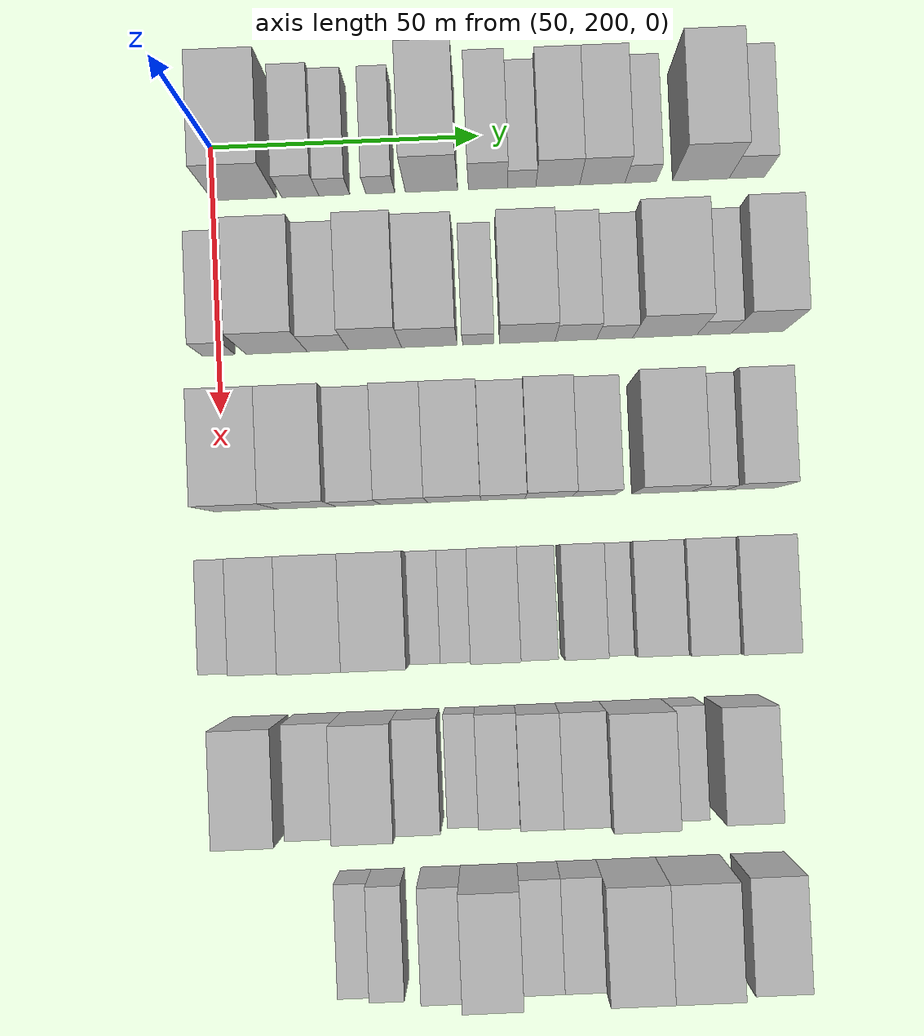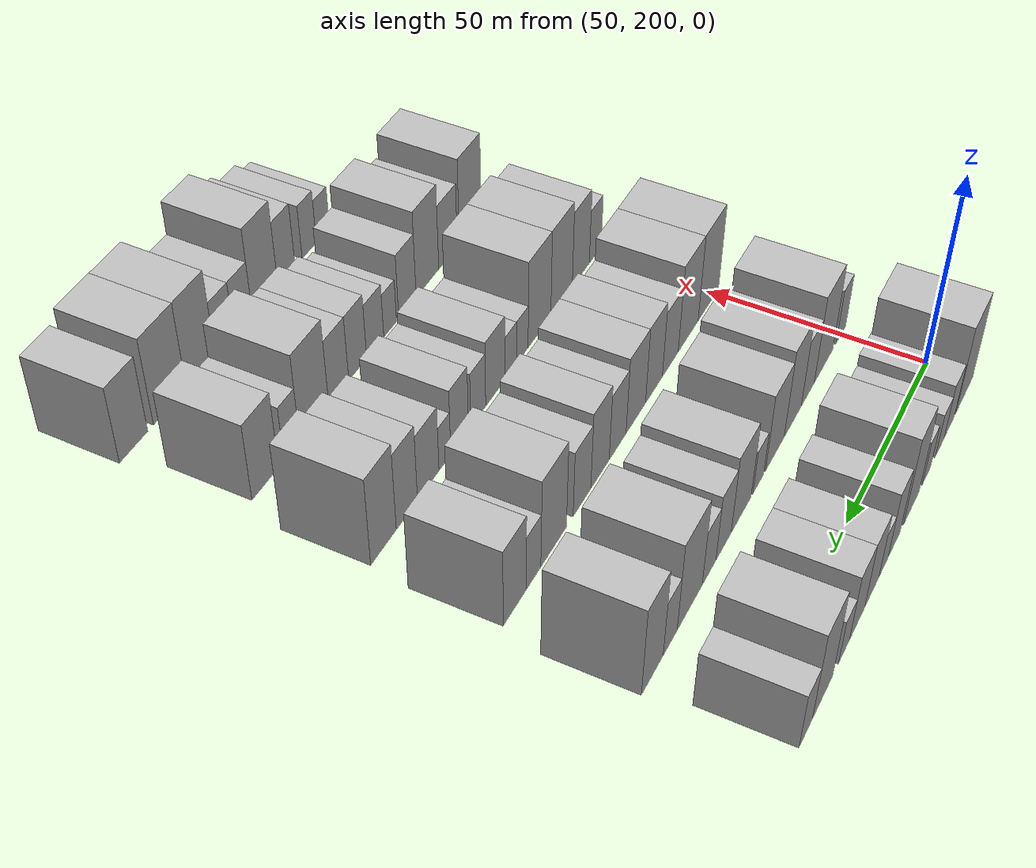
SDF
<sdf version="1.6">
 <world name="default">
  <model name="building_79">
   <static>1</static>
   <pose>50.0000 205.9828 0 0.000000 0.000000 0.000000</pose>
   <link name="link">
    <pose>0 0 12.00 0 0 0</pose>
    <collision name="collision"><geometry><box><size>20.0000 11.8627 24.0000</size></box></geometry></collision>
    <visual name="visual">
     <cast_shadows>0</cast_shadows>
     <geometry><box><size>20.0000 11.8627 24.0000</size></box></geometry>
     <material>
      <script>
       <uri>model://HANNAS_wall/materials/scripts</uri>
       <uri>model://HANNAS_wall/materials/textures</uri>
       <name>vrc/HANNAS_wall</name>
      </script>
     </material>
    </visual>
   </link>
  </model>
  <model name="building_80">
   <static>1</static>
   <pose>50.0000 216.3701 0 0.000000 0.000000 0.000000</pose>
   <link name="link">
    <pose>0 0 7.50 0 0 0</pose>
    <collision name="collision"><geometry><box><size>20.0000 6.9120 15.0000</size></box></geometry></collision>
    <visual name="visual">
     <cast_shadows>0</cast_shadows>
     <geometry><box><size>20.0000 6.9120 15.0000</size></box></geometry>
     <material>
      <script>
       <uri>model://HANNAS_wall/materials/scripts</uri>
       <uri>model://HANNAS_wall/materials/textures</uri>
       <name>vrc/HANNAS_wall</name>
      </script>
     </material>
    </visual>
   </link>
  </model>
  <model name="building_81">
   <static>1</static>
   <pose>50.0000 222.7027 0 0.000000 0.000000 0.000000</pose>
   <link name="link">
    <pose>0 0 6.00 0 0 0</pose>
    <collision name="collision"><geometry><box><size>20.0000 5.7532 12.0000</size></box></geometry></collision>
    <visual name="visual">
     <cast_shadows>0</cast_shadows>
     <geometry><box><size>20.0000 5.7532 12.0000</size></box></geometry>
     <material>
      <script>
       <uri>model://HANNAS_wall/materials/scripts</uri>
       <uri>model://HANNAS_wall/materials/textures</uri>
       <name>vrc/HANNAS_wall</name>
      </script>
     </material>
    </visual>
   </link>
  </model>
  <model name="building_82">
   <static>1</static>
   <pose>50.0000 231.2732 0 0.000000 0.000000 0.000000</pose>
   <link name="link">
    <pose>0 0 6.00 0 0 0</pose>
    <collision name="collision"><geometry><box><size>20.0000 5.3877 12.0000</size></box></geometry></collision>
    <visual name="visual">
     <cast_shadows>0</cast_shadows>
     <geometry><box><size>20.0000 5.3877 12.0000</size></box></geometry>
     <material>
      <script>
       <uri>model://HANNAS_wall/materials/scripts</uri>
       <uri>model://HANNAS_wall/materials/textures</uri>
       <name>vrc/HANNAS_wall</name>
      </script>
     </material>
    </visual>
   </link>
  </model>
  <model name="building_83">
   <static>1</static>
   <pose>50.0000 240.8361 0 0.000000 0.000000 0.000000</pose>
   <link name="link">
    <pose>0 0 12.00 0 0 0</pose>
    <collision name="collision"><geometry><box><size>20.0000 9.7381 24.0000</size></box></geometry></collision>
    <visual name="visual">
     <cast_shadows>0</cast_shadows>
     <geometry><box><size>20.0000 9.7381 24.0000</size></box></geometry>
     <material>
      <script>
       <uri>model://HANNAS_wall/materials/scripts</uri>
       <uri>model://HANNAS_wall/materials/textures</uri>
       <name>vrc/HANNAS_wall</name>
      </script>
     </material>
    </visual>
   </link>
  </model>
  <model name="building_84">
   <static>1</static>
   <pose>50.0000 251.3198 0 0.000000 0.000000 0.000000</pose>
   <link name="link">
    <pose>0 0 9.00 0 0 0</pose>
    <collision name="collision"><geometry><box><size>20.0000 7.2293 18.0000</size></box></geometry></collision>
    <visual name="visual">
     <cast_shadows>0</cast_shadows>
     <geometry><box><size>20.0000 7.2293 18.0000</size></box></geometry>
     <material>
      <script>
       <uri>model://HANNAS_wall/materials/scripts</uri>
       <uri>model://HANNAS_wall/materials/textures</uri>
       <name>vrc/HANNAS_wall</name>
      </script>
     </material>
    </visual>
   </link>
  </model>
  <model name="building_85">
   <static>1</static>
   <pose>50.0000 257.6001 0 0.000000 0.000000 0.000000</pose>
   <link name="link">
    <pose>0 0 6.00 0 0 0</pose>
    <collision name="collision"><geometry><box><size>20.0000 5.3312 12.0000</size></box></geometry></collision>
    <visual name="visual">
     <cast_shadows>0</cast_shadows>
     <geometry><box><size>20.0000 5.3312 12.0000</size></box></geometry>
     <material>
      <script>
       <uri>model://HANNAS_wall/materials/scripts</uri>
       <uri>model://HANNAS_wall/materials/textures</uri>
       <name>vrc/HANNAS_wall</name>
      </script>
     </material>
    </visual>
   </link>
  </model>
  <model name="building_86">
   <static>1</static>
   <pose>50.0000 264.3556 0 0.000000 0.000000 0.000000</pose>
   <link name="link">
    <pose>0 0 9.00 0 0 0</pose>
    <collision name="collision"><geometry><box><size>20.0000 8.1798 18.0000</size></box></geometry></collision>
    <visual name="visual">
     <cast_shadows>0</cast_shadows>
     <geometry><box><size>20.0000 8.1798 18.0000</size></box></geometry>
     <material>
      <script>
       <uri>model://HANNAS_wall/materials/scripts</uri>
       <uri>model://HANNAS_wall/materials/textures</uri>
       <name>vrc/HANNAS_wall</name>
      </script>
     </material>
    </visual>
   </link>
  </model>
  <model name="building_87">
   <static>1</static>
   <pose>50.0000 272.6690 0 0.000000 0.000000 0.000000</pose>
   <link name="link">
    <pose>0 0 9.00 0 0 0</pose>
    <collision name="collision"><geometry><box><size>20.0000 8.4469 18.0000</size></box></geometry></collision>
    <visual name="visual">
     <cast_shadows>0</cast_shadows>
     <geometry><box><size>20.0000 8.4469 18.0000</size></box></geometry>
     <material>
      <script>
       <uri>model://HANNAS_wall/materials/scripts</uri>
       <uri>model://HANNAS_wall/materials/textures</uri>
       <name>vrc/HANNAS_wall</name>
      </script>
     </material>
    </visual>
   </link>
  </model>
  <model name="building_88">
   <static>1</static>
   <pose>50.0000 279.8249 0 0.000000 0.000000 0.000000</pose>
   <link name="link">
    <pose>0 0 6.00 0 0 0</pose>
    <collision name="collision"><geometry><box><size>20.0000 5.8650 12.0000</size></box></geometry></collision>
    <visual name="visual">
     <cast_shadows>0</cast_shadows>
     <geometry><box><size>20.0000 5.8650 12.0000</size></box></geometry>
     <material>
      <script>
       <uri>model://HANNAS_wall/materials/scripts</uri>
       <uri>model://HANNAS_wall/materials/textures</uri>
       <name>vrc/HANNAS_wall</name>
      </script>
     </material>
    </visual>
   </link>
  </model>
  <model name="building_89">
   <static>1</static>
   <pose>50.0000 291.0413 0 0.000000 0.000000 0.000000</pose>
   <link name="link">
    <pose>0 0 12.00 0 0 0</pose>
    <collision name="collision"><geometry><box><size>20.0000 10.5678 24.0000</size></box></geometry></collision>
    <visual name="visual">
     <cast_shadows>0</cast_shadows>
     <geometry><box><size>20.0000 10.5678 24.0000</size></box></geometry>
     <material>
      <script>
       <uri>model://HANNAS_wall/materials/scripts</uri>
       <uri>model://HANNAS_wall/materials/textures</uri>
       <name>vrc/HANNAS_wall</name>
      </script>
     </material>
    </visual>
   </link>
  </model>
  <model name="building_90">
   <static>1</static>
   <pose>50.0000 299.6284 0 0.000000 0.000000 0.000000</pose>
   <link name="link">
    <pose>0 0 7.50 0 0 0</pose>
    <collision name="collision"><geometry><box><size>20.0000 6.6063 15.0000</size></box></geometry></collision>
    <visual name="visual">
     <cast_shadows>0</cast_shadows>
     <geometry><box><size>20.0000 6.6063 15.0000</size></box></geometry>
     <material>
      <script>
       <uri>model://HANNAS_wall/materials/scripts</uri>
       <uri>model://HANNAS_wall/materials/textures</uri>
       <name>vrc/HANNAS_wall</name>
      </script>
     </material>
    </visual>
   </link>
  </model>
  <model name="building_189">
   <static>1</static>
   <pose>79.0000 200.1089 0 0.000000 0.000000 0.000000</pose>
   <link name="link">
    <pose>0 0 7.50 0 0 0</pose>
    <collision name="collision"><geometry><box><size>20.0000 6.0738 15.0000</size></box></geometry></collision>
    <visual name="visual">
     <cast_shadows>0</cast_shadows>
     <geometry><box><size>20.0000 6.0738 15.0000</size></box></geometry>
     <material>
      <script>
       <uri>model://HANNAS_wall/materials/scripts</uri>
       <uri>model://HANNAS_wall/materials/textures</uri>
       <name>vrc/HANNAS_wall</name>
      </script>
     </material>
    </visual>
   </link>
  </model>
  <model name="building_190">
   <static>1</static>
   <pose>79.0000 210.8264 0 0.000000 0.000000 0.000000</pose>
   <link name="link">
    <pose>0 0 12.00 0 0 0</pose>
    <collision name="collision"><geometry><box><size>20.0000 11.3610 24.0000</size></box></geometry></collision>
    <visual name="visual">
     <cast_shadows>0</cast_shadows>
     <geometry><box><size>20.0000 11.3610 24.0000</size></box></geometry>
     <material>
      <script>
       <uri>model://HANNAS_wall/materials/scripts</uri>
       <uri>model://HANNAS_wall/materials/textures</uri>
       <name>vrc/HANNAS_wall</name>
      </script>
     </material>
    </visual>
   </link>
  </model>
  <model name="building_191">
   <static>1</static>
   <pose>79.0000 220.3596 0 0.000000 0.000000 0.000000</pose>
   <link name="link">
    <pose>0 0 9.00 0 0 0</pose>
    <collision name="collision"><geometry><box><size>20.0000 7.7055 18.0000</size></box></geometry></collision>
    <visual name="visual">
     <cast_shadows>0</cast_shadows>
     <geometry><box><size>20.0000 7.7055 18.0000</size></box></geometry>
     <material>
      <script>
       <uri>model://HANNAS_wall/materials/scripts</uri>
       <uri>model://HANNAS_wall/materials/textures</uri>
       <name>vrc/HANNAS_wall</name>
      </script>
     </material>
    </visual>
   </link>
  </model>
  <model name="building_192">
   <static>1</static>
   <pose>79.0000 229.1296 0 0.000000 0.000000 0.000000</pose>
   <link name="link">
    <pose>0 0 12.00 0 0 0</pose>
    <collision name="collision"><geometry><box><size>20.0000 9.8346 24.0000</size></box></geometry></collision>
    <visual name="visual">
     <cast_shadows>0</cast_shadows>
     <geometry><box><size>20.0000 9.8346 24.0000</size></box></geometry>
     <material>
      <script>
       <uri>model://HANNAS_wall/materials/scripts</uri>
       <uri>model://HANNAS_wall/materials/textures</uri>
       <name>vrc/HANNAS_wall</name>
      </script>
     </material>
    </visual>
   </link>
  </model>
  <model name="building_193">
   <static>1</static>
   <pose>79.0000 239.2369 0 0.000000 0.000000 0.000000</pose>
   <link name="link">
    <pose>0 0 10.50 0 0 0</pose>
    <collision name="collision"><geometry><box><size>20.0000 10.3800 21.0000</size></box></geometry></collision>
    <visual name="visual">
     <cast_shadows>0</cast_shadows>
     <geometry><box><size>20.0000 10.3800 21.0000</size></box></geometry>
     <material>
      <script>
       <uri>model://HANNAS_wall/materials/scripts</uri>
       <uri>model://HANNAS_wall/materials/textures</uri>
       <name>vrc/HANNAS_wall</name>
      </script>
     </material>
    </visual>
   </link>
  </model>
  <model name="building_194">
   <static>1</static>
   <pose>79.0000 248.3315 0 0.000000 0.000000 0.000000</pose>
   <link name="link">
    <pose>0 0 6.00 0 0 0</pose>
    <collision name="collision"><geometry><box><size>20.0000 5.8093 12.0000</size></box></geometry></collision>
    <visual name="visual">
     <cast_shadows>0</cast_shadows>
     <geometry><box><size>20.0000 5.8093 12.0000</size></box></geometry>
     <material>
      <script>
       <uri>model://HANNAS_wall/materials/scripts</uri>
       <uri>model://HANNAS_wall/materials/textures</uri>
       <name>vrc/HANNAS_wall</name>
      </script>
     </material>
    </visual>
   </link>
  </model>
  <model name="building_195">
   <static>1</static>
   <pose>79.0000 257.4009 0 0.000000 0.000000 0.000000</pose>
   <link name="link">
    <pose>0 0 10.50 0 0 0</pose>
    <collision name="collision"><geometry><box><size>20.0000 10.3294 21.0000</size></box></geometry></collision>
    <visual name="visual">
     <cast_shadows>0</cast_shadows>
     <geometry><box><size>20.0000 10.3294 21.0000</size></box></geometry>
     <material>
      <script>
       <uri>model://HANNAS_wall/materials/scripts</uri>
       <uri>model://HANNAS_wall/materials/textures</uri>
       <name>vrc/HANNAS_wall</name>
      </script>
     </material>
    </visual>
   </link>
  </model>
  <model name="building_196">
   <static>1</static>
   <pose>79.0000 266.4412 0 0.000000 0.000000 0.000000</pose>
   <link name="link">
    <pose>0 0 9.00 0 0 0</pose>
    <collision name="collision"><geometry><box><size>20.0000 7.7513 18.0000</size></box></geometry></collision>
    <visual name="visual">
     <cast_shadows>0</cast_shadows>
     <geometry><box><size>20.0000 7.7513 18.0000</size></box></geometry>
     <material>
      <script>
       <uri>model://HANNAS_wall/materials/scripts</uri>
       <uri>model://HANNAS_wall/materials/textures</uri>
       <name>vrc/HANNAS_wall</name>
      </script>
     </material>
    </visual>
   </link>
  </model>
  <model name="building_197">
   <static>1</static>
   <pose>79.0000 273.6778 0 0.000000 0.000000 0.000000</pose>
   <link name="link">
    <pose>0 0 7.50 0 0 0</pose>
    <collision name="collision"><geometry><box><size>20.0000 6.7219 15.0000</size></box></geometry></collision>
    <visual name="visual">
     <cast_shadows>0</cast_shadows>
     <geometry><box><size>20.0000 6.7219 15.0000</size></box></geometry>
     <material>
      <script>
       <uri>model://HANNAS_wall/materials/scripts</uri>
       <uri>model://HANNAS_wall/materials/textures</uri>
       <name>vrc/HANNAS_wall</name>
      </script>
     </material>
    </visual>
   </link>
  </model>
  <model name="building_198">
   <static>1</static>
   <pose>79.0000 282.9966 0 0.000000 0.000000 0.000000</pose>
   <link name="link">
    <pose>0 0 12.00 0 0 0</pose>
    <collision name="collision"><geometry><box><size>20.0000 11.9157 24.0000</size></box></geometry></collision>
    <visual name="visual">
     <cast_shadows>0</cast_shadows>
     <geometry><box><size>20.0000 11.9157 24.0000</size></box></geometry>
     <material>
      <script>
       <uri>model://HANNAS_wall/materials/scripts</uri>
       <uri>model://HANNAS_wall/materials/textures</uri>
       <name>vrc/HANNAS_wall</name>
      </script>
     </material>
    </visual>
   </link>
  </model>
  <model name="building_199">
   <static>1</static>
   <pose>79.0000 292.1682 0 0.000000 0.000000 0.000000</pose>
   <link name="link">
    <pose>0 0 7.50 0 0 0</pose>
    <collision name="collision"><geometry><box><size>20.0000 6.4274 15.0000</size></box></geometry></collision>
    <visual name="visual">
     <cast_shadows>0</cast_shadows>
     <geometry><box><size>20.0000 6.4274 15.0000</size></box></geometry>
     <material>
      <script>
       <uri>model://HANNAS_wall/materials/scripts</uri>
       <uri>model://HANNAS_wall/materials/textures</uri>
       <name>vrc/HANNAS_wall</name>
      </script>
     </material>
    </visual>
   </link>
  </model>
  <model name="building_200">
   <static>1</static>
   <pose>79.0000 300.2314 0 0.000000 0.000000 0.000000</pose>
   <link name="link">
    <pose>0 0 12.00 0 0 0</pose>
    <collision name="collision"><geometry><box><size>20.0000 9.6990 24.0000</size></box></geometry></collision>
    <visual name="visual">
     <cast_shadows>0</cast_shadows>
     <geometry><box><size>20.0000 9.6990 24.0000</size></box></geometry>
     <material>
      <script>
       <uri>model://HANNAS_wall/materials/scripts</uri>
       <uri>model://HANNAS_wall/materials/textures</uri>
       <name>vrc/HANNAS_wall</name>
      </script>
     </material>
    </visual>
   </link>
  </model>
  <model name="building_304">
   <static>1</static>
   <pose>108.0000 204.0010 0 0.000000 0.000000 0.000000</pose>
   <link name="link">
    <pose>0 0 12.00 0 0 0</pose>
    <collision name="collision"><geometry><box><size>20.0000 11.5509 24.0000</size></box></geometry></collision>
    <visual name="visual">
     <cast_shadows>0</cast_shadows>
     <geometry><box><size>20.0000 11.5509 24.0000</size></box></geometry>
     <material>
      <script>
       <uri>model://HANNAS_wall/materials/scripts</uri>
       <uri>model://HANNAS_wall/materials/textures</uri>
       <name>vrc/HANNAS_wall</name>
      </script>
     </material>
    </visual>
   </link>
  </model>
  <model name="building_305">
   <static>1</static>
   <pose>108.0000 215.2362 0 0.000000 0.000000 0.000000</pose>
   <link name="link">
    <pose>0 0 12.00 0 0 0</pose>
    <collision name="collision"><geometry><box><size>20.0000 10.9194 24.0000</size></box></geometry></collision>
    <visual name="visual">
     <cast_shadows>0</cast_shadows>
     <geometry><box><size>20.0000 10.9194 24.0000</size></box></geometry>
     <material>
      <script>
       <uri>model://HANNAS_wall/materials/scripts</uri>
       <uri>model://HANNAS_wall/materials/textures</uri>
       <name>vrc/HANNAS_wall</name>
      </script>
     </material>
    </visual>
   </link>
  </model>
  <model name="building_306">
   <static>1</static>
   <pose>108.0000 224.9003 0 0.000000 0.000000 0.000000</pose>
   <link name="link">
    <pose>0 0 9.00 0 0 0</pose>
    <collision name="collision"><geometry><box><size>20.0000 8.4086 18.0000</size></box></geometry></collision>
    <visual name="visual">
     <cast_shadows>0</cast_shadows>
     <geometry><box><size>20.0000 8.4086 18.0000</size></box></geometry>
     <material>
      <script>
       <uri>model://HANNAS_wall/materials/scripts</uri>
       <uri>model://HANNAS_wall/materials/textures</uri>
       <name>vrc/HANNAS_wall</name>
      </script>
     </material>
    </visual>
   </link>
  </model>
  <model name="building_307">
   <static>1</static>
   <pose>108.0000 233.4427 0 0.000000 0.000000 0.000000</pose>
   <link name="link">
    <pose>0 0 10.50 0 0 0</pose>
    <collision name="collision"><geometry><box><size>20.0000 8.6762 21.0000</size></box></geometry></collision>
    <visual name="visual">
     <cast_shadows>0</cast_shadows>
     <geometry><box><size>20.0000 8.6762 21.0000</size></box></geometry>
     <material>
      <script>
       <uri>model://HANNAS_wall/materials/scripts</uri>
       <uri>model://HANNAS_wall/materials/textures</uri>
       <name>vrc/HANNAS_wall</name>
      </script>
     </material>
    </visual>
   </link>
  </model>
  <model name="building_308">
   <static>1</static>
   <pose>108.0000 242.6672 0 0.000000 0.000000 0.000000</pose>
   <link name="link">
    <pose>0 0 10.50 0 0 0</pose>
    <collision name="collision"><geometry><box><size>20.0000 9.7727 21.0000</size></box></geometry></collision>
    <visual name="visual">
     <cast_shadows>0</cast_shadows>
     <geometry><box><size>20.0000 9.7727 21.0000</size></box></geometry>
     <material>
      <script>
       <uri>model://HANNAS_wall/materials/scripts</uri>
       <uri>model://HANNAS_wall/materials/textures</uri>
       <name>vrc/HANNAS_wall</name>
      </script>
     </material>
    </visual>
   </link>
  </model>
  <model name="building_309">
   <static>1</static>
   <pose>108.0000 251.6418 0 0.000000 0.000000 0.000000</pose>
   <link name="link">
    <pose>0 0 9.00 0 0 0</pose>
    <collision name="collision"><geometry><box><size>20.0000 8.1767 18.0000</size></box></geometry></collision>
    <visual name="visual">
     <cast_shadows>0</cast_shadows>
     <geometry><box><size>20.0000 8.1767 18.0000</size></box></geometry>
     <material>
      <script>
       <uri>model://HANNAS_wall/materials/scripts</uri>
       <uri>model://HANNAS_wall/materials/textures</uri>
       <name>vrc/HANNAS_wall</name>
      </script>
     </material>
    </visual>
   </link>
  </model>
  <model name="building_310">
   <static>1</static>
   <pose>108.0000 260.0749 0 0.000000 0.000000 0.000000</pose>
   <link name="link">
    <pose>0 0 10.50 0 0 0</pose>
    <collision name="collision"><geometry><box><size>20.0000 8.6895 21.0000</size></box></geometry></collision>
    <visual name="visual">
     <cast_shadows>0</cast_shadows>
     <geometry><box><size>20.0000 8.6895 21.0000</size></box></geometry>
     <material>
      <script>
       <uri>model://HANNAS_wall/materials/scripts</uri>
       <uri>model://HANNAS_wall/materials/textures</uri>
       <name>vrc/HANNAS_wall</name>
      </script>
     </material>
    </visual>
   </link>
  </model>
  <model name="building_311">
   <static>1</static>
   <pose>108.0000 268.4630 0 0.000000 0.000000 0.000000</pose>
   <link name="link">
    <pose>0 0 9.00 0 0 0</pose>
    <collision name="collision"><geometry><box><size>20.0000 8.0866 18.0000</size></box></geometry></collision>
    <visual name="visual">
     <cast_shadows>0</cast_shadows>
     <geometry><box><size>20.0000 8.0866 18.0000</size></box></geometry>
     <material>
      <script>
       <uri>model://HANNAS_wall/materials/scripts</uri>
       <uri>model://HANNAS_wall/materials/textures</uri>
       <name>vrc/HANNAS_wall</name>
      </script>
     </material>
    </visual>
   </link>
  </model>
  <model name="building_312">
   <static>1</static>
   <pose>108.0000 281.1162 0 0.000000 0.000000 0.000000</pose>
   <link name="link">
    <pose>0 0 12.00 0 0 0</pose>
    <collision name="collision"><geometry><box><size>20.0000 11.2198 24.0000</size></box></geometry></collision>
    <visual name="visual">
     <cast_shadows>0</cast_shadows>
     <geometry><box><size>20.0000 11.2198 24.0000</size></box></geometry>
     <material>
      <script>
       <uri>model://HANNAS_wall/materials/scripts</uri>
       <uri>model://HANNAS_wall/materials/textures</uri>
       <name>vrc/HANNAS_wall</name>
      </script>
     </material>
    </visual>
   </link>
  </model>
  <model name="building_313">
   <static>1</static>
   <pose>108.0000 289.8422 0 0.000000 0.000000 0.000000</pose>
   <link name="link">
    <pose>0 0 7.50 0 0 0</pose>
    <collision name="collision"><geometry><box><size>20.0000 6.2321 15.0000</size></box></geometry></collision>
    <visual name="visual">
     <cast_shadows>0</cast_shadows>
     <geometry><box><size>20.0000 6.2321 15.0000</size></box></geometry>
     <material>
      <script>
       <uri>model://HANNAS_wall/materials/scripts</uri>
       <uri>model://HANNAS_wall/materials/textures</uri>
       <name>vrc/HANNAS_wall</name>
      </script>
     </material>
    </visual>
   </link>
  </model>
  <model name="building_314">
   <static>1</static>
   <pose>108.0000 297.6849 0 0.000000 0.000000 0.000000</pose>
   <link name="link">
    <pose>0 0 10.50 0 0 0</pose>
    <collision name="collision"><geometry><box><size>20.0000 9.4532 21.0000</size></box></geometry></collision>
    <visual name="visual">
     <cast_shadows>0</cast_shadows>
     <geometry><box><size>20.0000 9.4532 21.0000</size></box></geometry>
     <material>
      <script>
       <uri>model://HANNAS_wall/materials/scripts</uri>
       <uri>model://HANNAS_wall/materials/textures</uri>
       <name>vrc/HANNAS_wall</name>
      </script>
     </material>
    </visual>
   </link>
  </model>
  <model name="building_413">
   <static>1</static>
   <pose>137.0000 200.0556 0 0.000000 0.000000 0.000000</pose>
   <link name="link">
    <pose>0 0 7.50 0 0 0</pose>
    <collision name="collision"><geometry><box><size>20.0000 6.2743 15.0000</size></box></geometry></collision>
    <visual name="visual">
     <cast_shadows>0</cast_shadows>
     <geometry><box><size>20.0000 6.2743 15.0000</size></box></geometry>
     <material>
      <script>
       <uri>model://HANNAS_wall/materials/scripts</uri>
       <uri>model://HANNAS_wall/materials/textures</uri>
       <name>vrc/HANNAS_wall</name>
      </script>
     </material>
    </visual>
   </link>
  </model>
  <model name="building_414">
   <static>1</static>
   <pose>137.0000 207.6101 0 0.000000 0.000000 0.000000</pose>
   <link name="link">
    <pose>0 0 10.50 0 0 0</pose>
    <collision name="collision"><geometry><box><size>20.0000 8.8346 21.0000</size></box></geometry></collision>
    <visual name="visual">
     <cast_shadows>0</cast_shadows>
     <geometry><box><size>20.0000 8.8346 21.0000</size></box></geometry>
     <material>
      <script>
       <uri>model://HANNAS_wall/materials/scripts</uri>
       <uri>model://HANNAS_wall/materials/textures</uri>
       <name>vrc/HANNAS_wall</name>
      </script>
     </material>
    </visual>
   </link>
  </model>
  <model name="building_415">
   <static>1</static>
   <pose>137.0000 217.4178 0 0.000000 0.000000 0.000000</pose>
   <link name="link">
    <pose>0 0 12.00 0 0 0</pose>
    <collision name="collision"><geometry><box><size>20.0000 10.7808 24.0000</size></box></geometry></collision>
    <visual name="visual">
     <cast_shadows>0</cast_shadows>
     <geometry><box><size>20.0000 10.7808 24.0000</size></box></geometry>
     <material>
      <script>
       <uri>model://HANNAS_wall/materials/scripts</uri>
       <uri>model://HANNAS_wall/materials/textures</uri>
       <name>vrc/HANNAS_wall</name>
      </script>
     </material>
    </visual>
   </link>
  </model>
  <model name="building_416">
   <static>1</static>
   <pose>137.0000 228.3208 0 0.000000 0.000000 0.000000</pose>
   <link name="link">
    <pose>0 0 12.00 0 0 0</pose>
    <collision name="collision"><geometry><box><size>20.0000 11.0253 24.0000</size></box></geometry></collision>
    <visual name="visual">
     <cast_shadows>0</cast_shadows>
     <geometry><box><size>20.0000 11.0253 24.0000</size></box></geometry>
     <material>
      <script>
       <uri>model://HANNAS_wall/materials/scripts</uri>
       <uri>model://HANNAS_wall/materials/textures</uri>
       <name>vrc/HANNAS_wall</name>
      </script>
     </material>
    </visual>
   </link>
  </model>
  <model name="building_417">
   <static>1</static>
   <pose>137.0000 236.5293 0 0.000000 0.000000 0.000000</pose>
   <link name="link">
    <pose>0 0 6.00 0 0 0</pose>
    <collision name="collision"><geometry><box><size>20.0000 5.3918 12.0000</size></box></geometry></collision>
    <visual name="visual">
     <cast_shadows>0</cast_shadows>
     <geometry><box><size>20.0000 5.3918 12.0000</size></box></geometry>
     <material>
      <script>
       <uri>model://HANNAS_wall/materials/scripts</uri>
       <uri>model://HANNAS_wall/materials/textures</uri>
       <name>vrc/HANNAS_wall</name>
      </script>
     </material>
    </visual>
   </link>
  </model>
  <model name="building_418">
   <static>1</static>
   <pose>137.0000 241.9447 0 0.000000 0.000000 0.000000</pose>
   <link name="link">
    <pose>0 0 6.00 0 0 0</pose>
    <collision name="collision"><geometry><box><size>20.0000 5.4389 12.0000</size></box></geometry></collision>
    <visual name="visual">
     <cast_shadows>0</cast_shadows>
     <geometry><box><size>20.0000 5.4389 12.0000</size></box></geometry>
     <material>
      <script>
       <uri>model://HANNAS_wall/materials/scripts</uri>
       <uri>model://HANNAS_wall/materials/textures</uri>
       <name>vrc/HANNAS_wall</name>
      </script>
     </material>
    </visual>
   </link>
  </model>
  <model name="building_419">
   <static>1</static>
   <pose>137.0000 249.0432 0 0.000000 0.000000 0.000000</pose>
   <link name="link">
    <pose>0 0 9.00 0 0 0</pose>
    <collision name="collision"><geometry><box><size>20.0000 8.7581 18.0000</size></box></geometry></collision>
    <visual name="visual">
     <cast_shadows>0</cast_shadows>
     <geometry><box><size>20.0000 8.7581 18.0000</size></box></geometry>
     <material>
      <script>
       <uri>model://HANNAS_wall/materials/scripts</uri>
       <uri>model://HANNAS_wall/materials/textures</uri>
       <name>vrc/HANNAS_wall</name>
      </script>
     </material>
    </visual>
   </link>
  </model>
  <model name="building_420">
   <static>1</static>
   <pose>137.0000 256.7247 0 0.000000 0.000000 0.000000</pose>
   <link name="link">
    <pose>0 0 7.50 0 0 0</pose>
    <collision name="collision"><geometry><box><size>20.0000 6.6049 15.0000</size></box></geometry></collision>
    <visual name="visual">
     <cast_shadows>0</cast_shadows>
     <geometry><box><size>20.0000 6.6049 15.0000</size></box></geometry>
     <material>
      <script>
       <uri>model://HANNAS_wall/materials/scripts</uri>
       <uri>model://HANNAS_wall/materials/textures</uri>
       <name>vrc/HANNAS_wall</name>
      </script>
     </material>
    </visual>
   </link>
  </model>
  <model name="building_421">
   <static>1</static>
   <pose>137.0000 264.8394 0 0.000000 0.000000 0.000000</pose>
   <link name="link">
    <pose>0 0 9.00 0 0 0</pose>
    <collision name="collision"><geometry><box><size>20.0000 7.6245 18.0000</size></box></geometry></collision>
    <visual name="visual">
     <cast_shadows>0</cast_shadows>
     <geometry><box><size>20.0000 7.6245 18.0000</size></box></geometry>
     <material>
      <script>
       <uri>model://HANNAS_wall/materials/scripts</uri>
       <uri>model://HANNAS_wall/materials/textures</uri>
       <name>vrc/HANNAS_wall</name>
      </script>
     </material>
    </visual>
   </link>
  </model>
  <model name="building_422">
   <static>1</static>
   <pose>137.0000 271.1323 0 0.000000 0.000000 0.000000</pose>
   <link name="link">
    <pose>0 0 6.00 0 0 0</pose>
    <collision name="collision"><geometry><box><size>20.0000 4.9613 12.0000</size></box></geometry></collision>
    <visual name="visual">
     <cast_shadows>0</cast_shadows>
     <geometry><box><size>20.0000 4.9613 12.0000</size></box></geometry>
     <material>
      <script>
       <uri>model://HANNAS_wall/materials/scripts</uri>
       <uri>model://HANNAS_wall/materials/textures</uri>
       <name>vrc/HANNAS_wall</name>
      </script>
     </material>
    </visual>
   </link>
  </model>
  <model name="building_423">
   <static>1</static>
   <pose>137.0000 278.0330 0 0.000000 0.000000 0.000000</pose>
   <link name="link">
    <pose>0 0 9.00 0 0 0</pose>
    <collision name="collision"><geometry><box><size>20.0000 8.8399 18.0000</size></box></geometry></collision>
    <visual name="visual">
     <cast_shadows>0</cast_shadows>
     <geometry><box><size>20.0000 8.8399 18.0000</size></box></geometry>
     <material>
      <script>
       <uri>model://HANNAS_wall/materials/scripts</uri>
       <uri>model://HANNAS_wall/materials/textures</uri>
       <name>vrc/HANNAS_wall</name>
      </script>
     </material>
    </visual>
   </link>
  </model>
  <model name="building_424">
   <static>1</static>
   <pose>137.0000 286.6938 0 0.000000 0.000000 0.000000</pose>
   <link name="link">
    <pose>0 0 10.50 0 0 0</pose>
    <collision name="collision"><geometry><box><size>20.0000 8.4818 21.0000</size></box></geometry></collision>
    <visual name="visual">
     <cast_shadows>0</cast_shadows>
     <geometry><box><size>20.0000 8.4818 21.0000</size></box></geometry>
     <material>
      <script>
       <uri>model://HANNAS_wall/materials/scripts</uri>
       <uri>model://HANNAS_wall/materials/textures</uri>
       <name>vrc/HANNAS_wall</name>
      </script>
     </material>
    </visual>
   </link>
  </model>
  <model name="building_425">
   <static>1</static>
   <pose>137.0000 295.8963 0 0.000000 0.000000 0.000000</pose>
   <link name="link">
    <pose>0 0 12.00 0 0 0</pose>
    <collision name="collision"><geometry><box><size>20.0000 9.9231 24.0000</size></box></geometry></collision>
    <visual name="visual">
     <cast_shadows>0</cast_shadows>
     <geometry><box><size>20.0000 9.9231 24.0000</size></box></geometry>
     <material>
      <script>
       <uri>model://HANNAS_wall/materials/scripts</uri>
       <uri>model://HANNAS_wall/materials/textures</uri>
       <name>vrc/HANNAS_wall</name>
      </script>
     </material>
    </visual>
   </link>
  </model>
  <model name="building_532">
   <static>1</static>
   <pose>166.0000 205.0736 0 0.000000 0.000000 0.000000</pose>
   <link name="link">
    <pose>0 0 12.00 0 0 0</pose>
    <collision name="collision"><geometry><box><size>20.0000 10.6306 24.0000</size></box></geometry></collision>
    <visual name="visual">
     <cast_shadows>0</cast_shadows>
     <geometry><box><size>20.0000 10.6306 24.0000</size></box></geometry>
     <material>
      <script>
       <uri>model://HANNAS_wall/materials/scripts</uri>
       <uri>model://HANNAS_wall/materials/textures</uri>
       <name>vrc/HANNAS_wall</name>
      </script>
     </material>
    </visual>
   </link>
  </model>
  <model name="building_533">
   <static>1</static>
   <pose>166.0000 215.7365 0 0.000000 0.000000 0.000000</pose>
   <link name="link">
    <pose>0 0 9.00 0 0 0</pose>
    <collision name="collision"><geometry><box><size>20.0000 8.6952 18.0000</size></box></geometry></collision>
    <visual name="visual">
     <cast_shadows>0</cast_shadows>
     <geometry><box><size>20.0000 8.6952 18.0000</size></box></geometry>
     <material>
      <script>
       <uri>model://HANNAS_wall/materials/scripts</uri>
       <uri>model://HANNAS_wall/materials/textures</uri>
       <name>vrc/HANNAS_wall</name>
      </script>
     </material>
    </visual>
   </link>
  </model>
  <model name="building_534">
   <static>1</static>
   <pose>166.0000 225.2896 0 0.000000 0.000000 0.000000</pose>
   <link name="link">
    <pose>0 0 12.00 0 0 0</pose>
    <collision name="collision"><geometry><box><size>20.0000 10.4110 24.0000</size></box></geometry></collision>
    <visual name="visual">
     <cast_shadows>0</cast_shadows>
     <geometry><box><size>20.0000 10.4110 24.0000</size></box></geometry>
     <material>
      <script>
       <uri>model://HANNAS_wall/materials/scripts</uri>
       <uri>model://HANNAS_wall/materials/textures</uri>
       <name>vrc/HANNAS_wall</name>
      </script>
     </material>
    </visual>
   </link>
  </model>
  <model name="building_535">
   <static>1</static>
   <pose>166.0000 234.3766 0 0.000000 0.000000 0.000000</pose>
   <link name="link">
    <pose>0 0 9.00 0 0 0</pose>
    <collision name="collision"><geometry><box><size>20.0000 7.7631 18.0000</size></box></geometry></collision>
    <visual name="visual">
     <cast_shadows>0</cast_shadows>
     <geometry><box><size>20.0000 7.7631 18.0000</size></box></geometry>
     <material>
      <script>
       <uri>model://HANNAS_wall/materials/scripts</uri>
       <uri>model://HANNAS_wall/materials/textures</uri>
       <name>vrc/HANNAS_wall</name>
      </script>
     </material>
    </visual>
   </link>
  </model>
  <model name="building_536">
   <static>1</static>
   <pose>166.0000 242.0216 0 0.000000 0.000000 0.000000</pose>
   <link name="link">
    <pose>0 0 6.00 0 0 0</pose>
    <collision name="collision"><geometry><box><size>20.0000 5.5269 12.0000</size></box></geometry></collision>
    <visual name="visual">
     <cast_shadows>0</cast_shadows>
     <geometry><box><size>20.0000 5.5269 12.0000</size></box></geometry>
     <material>
      <script>
       <uri>model://HANNAS_wall/materials/scripts</uri>
       <uri>model://HANNAS_wall/materials/textures</uri>
       <name>vrc/HANNAS_wall</name>
      </script>
     </material>
    </visual>
   </link>
  </model>
  <model name="building_537">
   <static>1</static>
   <pose>166.0000 248.4330 0 0.000000 0.000000 0.000000</pose>
   <link name="link">
    <pose>0 0 7.50 0 0 0</pose>
    <collision name="collision"><geometry><box><size>20.0000 7.2959 15.0000</size></box></geometry></collision>
    <visual name="visual">
     <cast_shadows>0</cast_shadows>
     <geometry><box><size>20.0000 7.2959 15.0000</size></box></geometry>
     <material>
      <script>
       <uri>model://HANNAS_wall/materials/scripts</uri>
       <uri>model://HANNAS_wall/materials/textures</uri>
       <name>vrc/HANNAS_wall</name>
      </script>
     </material>
    </visual>
   </link>
  </model>
  <model name="building_538">
   <static>1</static>
   <pose>166.0000 255.8301 0 0.000000 0.000000 0.000000</pose>
   <link name="link">
    <pose>0 0 9.00 0 0 0</pose>
    <collision name="collision"><geometry><box><size>20.0000 7.4985 18.0000</size></box></geometry></collision>
    <visual name="visual">
     <cast_shadows>0</cast_shadows>
     <geometry><box><size>20.0000 7.4985 18.0000</size></box></geometry>
     <material>
      <script>
       <uri>model://HANNAS_wall/materials/scripts</uri>
       <uri>model://HANNAS_wall/materials/textures</uri>
       <name>vrc/HANNAS_wall</name>
      </script>
     </material>
    </visual>
   </link>
  </model>
  <model name="building_539">
   <static>1</static>
   <pose>166.0000 263.6346 0 0.000000 0.000000 0.000000</pose>
   <link name="link">
    <pose>0 0 9.00 0 0 0</pose>
    <collision name="collision"><geometry><box><size>20.0000 8.1105 18.0000</size></box></geometry></collision>
    <visual name="visual">
     <cast_shadows>0</cast_shadows>
     <geometry><box><size>20.0000 8.1105 18.0000</size></box></geometry>
     <material>
      <script>
       <uri>model://HANNAS_wall/materials/scripts</uri>
       <uri>model://HANNAS_wall/materials/textures</uri>
       <name>vrc/HANNAS_wall</name>
      </script>
     </material>
    </visual>
   </link>
  </model>
  <model name="building_540">
   <static>1</static>
   <pose>166.0000 273.4049 0 0.000000 0.000000 0.000000</pose>
   <link name="link">
    <pose>0 0 12.00 0 0 0</pose>
    <collision name="collision"><geometry><box><size>20.0000 11.4301 24.0000</size></box></geometry></collision>
    <visual name="visual">
     <cast_shadows>0</cast_shadows>
     <geometry><box><size>20.0000 11.4301 24.0000</size></box></geometry>
     <material>
      <script>
       <uri>model://HANNAS_wall/materials/scripts</uri>
       <uri>model://HANNAS_wall/materials/textures</uri>
       <name>vrc/HANNAS_wall</name>
      </script>
     </material>
    </visual>
   </link>
  </model>
  <model name="building_541">
   <static>1</static>
   <pose>166.0000 282.1471 0 0.000000 0.000000 0.000000</pose>
   <link name="link">
    <pose>0 0 7.50 0 0 0</pose>
    <collision name="collision"><geometry><box><size>20.0000 6.0544 15.0000</size></box></geometry></collision>
    <visual name="visual">
     <cast_shadows>0</cast_shadows>
     <geometry><box><size>20.0000 6.0544 15.0000</size></box></geometry>
     <material>
      <script>
       <uri>model://HANNAS_wall/materials/scripts</uri>
       <uri>model://HANNAS_wall/materials/textures</uri>
       <name>vrc/HANNAS_wall</name>
      </script>
     </material>
    </visual>
   </link>
  </model>
  <model name="building_542">
   <static>1</static>
   <pose>166.0000 292.0950 0 0.000000 0.000000 0.000000</pose>
   <link name="link">
    <pose>0 0 10.50 0 0 0</pose>
    <collision name="collision"><geometry><box><size>20.0000 9.8413 21.0000</size></box></geometry></collision>
    <visual name="visual">
     <cast_shadows>0</cast_shadows>
     <geometry><box><size>20.0000 9.8413 21.0000</size></box></geometry>
     <material>
      <script>
       <uri>model://HANNAS_wall/materials/scripts</uri>
       <uri>model://HANNAS_wall/materials/textures</uri>
       <name>vrc/HANNAS_wall</name>
      </script>
     </material>
    </visual>
   </link>
  </model>
  <model name="building_649">
   <static>1</static>
   <pose>195.0000 221.6309 0 0.000000 0.000000 0.000000</pose>
   <link name="link">
    <pose>0 0 6.00 0 0 0</pose>
    <collision name="collision"><geometry><box><size>20.0000 5.7925 12.0000</size></box></geometry></collision>
    <visual name="visual">
     <cast_shadows>0</cast_shadows>
     <geometry><box><size>20.0000 5.7925 12.0000</size></box></geometry>
     <material>
      <script>
       <uri>model://HANNAS_wall/materials/scripts</uri>
       <uri>model://HANNAS_wall/materials/textures</uri>
       <name>vrc/HANNAS_wall</name>
      </script>
     </material>
    </visual>
   </link>
  </model>
  <model name="building_650">
   <static>1</static>
   <pose>195.0000 227.6031 0 0.000000 0.000000 0.000000</pose>
   <link name="link">
    <pose>0 0 7.50 0 0 0</pose>
    <collision name="collision"><geometry><box><size>20.0000 6.1520 15.0000</size></box></geometry></collision>
    <visual name="visual">
     <cast_shadows>0</cast_shadows>
     <geometry><box><size>20.0000 6.1520 15.0000</size></box></geometry>
     <material>
      <script>
       <uri>model://HANNAS_wall/materials/scripts</uri>
       <uri>model://HANNAS_wall/materials/textures</uri>
       <name>vrc/HANNAS_wall</name>
      </script>
     </material>
    </visual>
   </link>
  </model>
  <model name="building_651">
   <static>1</static>
   <pose>195.0000 237.2865 0 0.000000 0.000000 0.000000</pose>
   <link name="link">
    <pose>0 0 9.00 0 0 0</pose>
    <collision name="collision"><geometry><box><size>20.0000 7.2147 18.0000</size></box></geometry></collision>
    <visual name="visual">
     <cast_shadows>0</cast_shadows>
     <geometry><box><size>20.0000 7.2147 18.0000</size></box></geometry>
     <material>
      <script>
       <uri>model://HANNAS_wall/materials/scripts</uri>
       <uri>model://HANNAS_wall/materials/textures</uri>
       <name>vrc/HANNAS_wall</name>
      </script>
     </material>
    </visual>
   </link>
  </model>
  <model name="building_652">
   <static>1</static>
   <pose>195.0000 246.1002 0 0.000000 0.000000 0.000000</pose>
   <link name="link">
    <pose>0 0 12.00 0 0 0</pose>
    <collision name="collision"><geometry><box><size>20.0000 10.4128 24.0000</size></box></geometry></collision>
    <visual name="visual">
     <cast_shadows>0</cast_shadows>
     <geometry><box><size>20.0000 10.4128 24.0000</size></box></geometry>
     <material>
      <script>
       <uri>model://HANNAS_wall/materials/scripts</uri>
       <uri>model://HANNAS_wall/materials/textures</uri>
       <name>vrc/HANNAS_wall</name>
      </script>
     </material>
    </visual>
   </link>
  </model>
  <model name="building_653">
   <static>1</static>
   <pose>195.0000 254.9628 0 0.000000 0.000000 0.000000</pose>
   <link name="link">
    <pose>0 0 7.50 0 0 0</pose>
    <collision name="collision"><geometry><box><size>20.0000 7.3122 15.0000</size></box></geometry></collision>
    <visual name="visual">
     <cast_shadows>0</cast_shadows>
     <geometry><box><size>20.0000 7.3122 15.0000</size></box></geometry>
     <material>
      <script>
       <uri>model://HANNAS_wall/materials/scripts</uri>
       <uri>model://HANNAS_wall/materials/textures</uri>
       <name>vrc/HANNAS_wall</name>
      </script>
     </material>
    </visual>
   </link>
  </model>
  <model name="building_654">
   <static>1</static>
   <pose>195.0000 262.2387 0 0.000000 0.000000 0.000000</pose>
   <link name="link">
    <pose>0 0 7.50 0 0 0</pose>
    <collision name="collision"><geometry><box><size>20.0000 7.2397 15.0000</size></box></geometry></collision>
    <visual name="visual">
     <cast_shadows>0</cast_shadows>
     <geometry><box><size>20.0000 7.2397 15.0000</size></box></geometry>
     <material>
      <script>
       <uri>model://HANNAS_wall/materials/scripts</uri>
       <uri>model://HANNAS_wall/materials/textures</uri>
       <name>vrc/HANNAS_wall</name>
      </script>
     </material>
    </visual>
   </link>
  </model>
  <model name="building_655">
   <static>1</static>
   <pose>195.0000 271.3250 0 0.000000 0.000000 0.000000</pose>
   <link name="link">
    <pose>0 0 12.00 0 0 0</pose>
    <collision name="collision"><geometry><box><size>20.0000 10.9330 24.0000</size></box></geometry></collision>
    <visual name="visual">
     <cast_shadows>0</cast_shadows>
     <geometry><box><size>20.0000 10.9330 24.0000</size></box></geometry>
     <material>
      <script>
       <uri>model://HANNAS_wall/materials/scripts</uri>
       <uri>model://HANNAS_wall/materials/textures</uri>
       <name>vrc/HANNAS_wall</name>
      </script>
     </material>
    </visual>
   </link>
  </model>
  <model name="building_656">
   <static>1</static>
   <pose>195.0000 282.7331 0 0.000000 0.000000 0.000000</pose>
   <link name="link">
    <pose>0 0 12.00 0 0 0</pose>
    <collision name="collision"><geometry><box><size>20.0000 11.8832 24.0000</size></box></geometry></collision>
    <visual name="visual">
     <cast_shadows>0</cast_shadows>
     <geometry><box><size>20.0000 11.8832 24.0000</size></box></geometry>
     <material>
      <script>
       <uri>model://HANNAS_wall/materials/scripts</uri>
       <uri>model://HANNAS_wall/materials/textures</uri>
       <name>vrc/HANNAS_wall</name>
      </script>
     </material>
    </visual>
   </link>
  </model>
  <model name="building_657">
   <static>1</static>
   <pose>195.0000 295.6038 0 0.000000 0.000000 0.000000</pose>
   <link name="link">
    <pose>0 0 10.50 0 0 0</pose>
    <collision name="collision"><geometry><box><size>20.0000 9.8582 21.0000</size></box></geometry></collision>
    <visual name="visual">
     <cast_shadows>0</cast_shadows>
     <geometry><box><size>20.0000 9.8582 21.0000</size></box></geometry>
     <material>
      <script>
       <uri>model://HANNAS_wall/materials/scripts</uri>
       <uri>model://HANNAS_wall/materials/textures</uri>
       <name>vrc/HANNAS_wall</name>
      </script>
     </material>
    </visual>
   </link>
  </model>
 </world>
</sdf>
